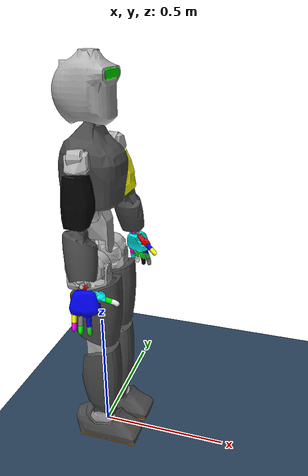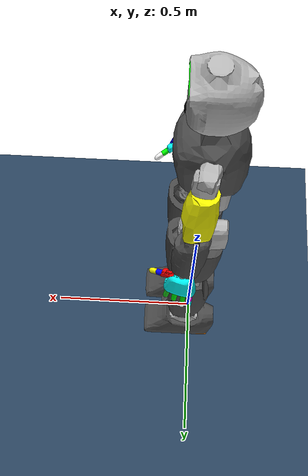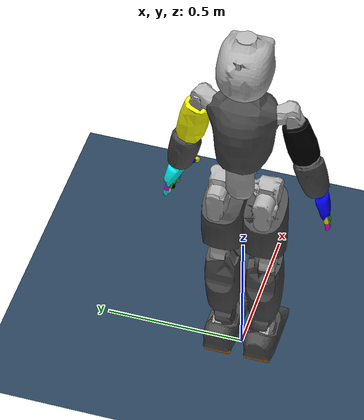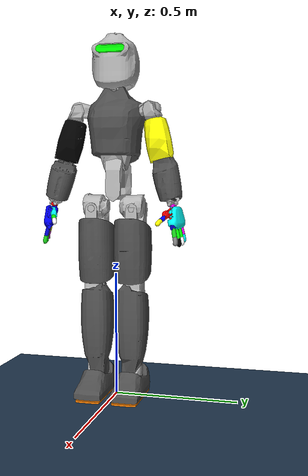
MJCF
<mujoco model="ergoCub">
  <compiler angle="radian" meshdir="./meshes/simmechanics/" autolimits="true" />
  <default />
  <asset>
    <mesh name="sim_ecub_r_hip_1_prt" file="sim_ecub_r_hip_1_prt.stl" scale="0.001 0.001 0.001" />
    <mesh name="sim_ecub_r_hip_2_prt" file="sim_ecub_r_hip_2_prt.stl" scale="0.001 0.001 0.001" />
    <mesh name="sim_ecub_r_hip_3_prt" file="sim_ecub_r_hip_3_prt.stl" scale="0.001 0.001 0.001" />
    <mesh name="sim_ecub_r_upper_leg_prt" file="sim_ecub_r_upper_leg_prt.stl" scale="0.001 0.001 0.001" />
    <mesh name="sim_ecub_r_lower_leg_prt" file="sim_ecub_r_lower_leg_prt.stl" scale="0.001 0.001 0.001" />
    <mesh name="sim_ecub_r_ankle_1_prt" file="sim_ecub_r_ankle_1_prt.stl" scale="0.001 0.001 0.001" />
    <mesh name="sim_ecub_r_ankle_2_prt" file="sim_ecub_r_ankle_2_prt.stl" scale="0.001 0.001 0.001" />
    <mesh name="sim_ecub_r_foot_rear_prt" file="sim_ecub_r_foot_rear_prt.stl" scale="0.001 0.001 0.001" />
    <mesh name="sim_ecub_r_foot_front_prt" file="sim_ecub_r_foot_front_prt.stl" scale="0.001 0.001 0.001" />
    <mesh name="sim_ecub_l_hip_1_prt" file="sim_ecub_l_hip_1_prt.stl" scale="0.001 0.001 0.001" />
    <mesh name="sim_ecub_l_hip_2_prt" file="sim_ecub_l_hip_2_prt.stl" scale="0.001 0.001 0.001" />
    <mesh name="sim_ecub_l_hip_3_prt" file="sim_ecub_l_hip_3_prt.stl" scale="0.001 0.001 0.001" />
    <mesh name="sim_ecub_l_upper_leg_prt" file="sim_ecub_l_upper_leg_prt.stl" scale="0.001 0.001 0.001" />
    <mesh name="sim_ecub_l_lower_leg_prt" file="sim_ecub_l_lower_leg_prt.stl" scale="0.001 0.001 0.001" />
    <mesh name="sim_ecub_l_ankle_1_prt" file="sim_ecub_l_ankle_1_prt.stl" scale="0.001 0.001 0.001" />
    <mesh name="sim_ecub_l_ankle_2_prt" file="sim_ecub_l_ankle_2_prt.stl" scale="0.001 0.001 0.001" />
    <mesh name="sim_ecub_l_foot_front_prt" file="sim_ecub_l_foot_front_prt.stl" scale="0.001 0.001 0.001" />
    <mesh name="sim_ecub_l_foot_rear_prt" file="sim_ecub_l_foot_rear_prt.stl" scale="0.001 0.001 0.001" />
    <mesh name="sim_ecub_torso_1_prt" file="sim_ecub_torso_1_prt.stl" scale="0.001 0.001 0.001" />
    <mesh name="sim_ecub_torso_2_prt" file="sim_ecub_torso_2_prt.stl" scale="0.001 0.001 0.001" />
    <mesh name="sim_ecub_chest_prt" file="sim_ecub_chest_prt.stl" scale="0.001 0.001 0.001" />
    <mesh name="sim_ecub_head_neck_2_prt" file="sim_ecub_head_neck_2_prt.stl" scale="0.001 0.001 0.001" />
    <mesh name="sim_ecub_head_neck_3_prt" file="sim_ecub_head_neck_3_prt.stl" scale="0.001 0.001 0.001" />
    <mesh name="sim_ecub_head_prt" file="sim_ecub_head_prt.stl" scale="0.001 0.001 0.001" />
    <mesh name="sim_ecub_realsense_prt" file="sim_ecub_realsense_prt.stl" scale="0.001 0.001 0.001" />
    <mesh name="sim_ecub_r_shoulder_1_prt" file="sim_ecub_r_shoulder_1_prt.stl" scale="0.001 0.001 0.001" />
    <mesh name="sim_ecub_r_shoulder_2_prt" file="sim_ecub_r_shoulder_2_prt.stl" scale="0.001 0.001 0.001" />
    <mesh name="sim_ecub_r_shoulder_3_prt" file="sim_ecub_r_shoulder_3_prt.stl" scale="0.001 0.001 0.001" />
    <mesh name="sim_ecub_r_upperarm_prt" file="sim_ecub_r_upperarm_prt.stl" scale="0.001 0.001 0.001" />
    <mesh name="sim_ecub_r_forearm_prt" file="sim_ecub_r_forearm_prt.stl" scale="0.001 0.001 0.001" />
    <mesh name="sim_ecub_r_wrist_1_prt" file="sim_ecub_r_wrist_1_prt.stl" scale="0.001 0.001 0.001" />
    <mesh name="sim_ecub_r_wrist_2_prt" file="sim_ecub_r_wrist_2_prt.stl" scale="0.001 0.001 0.001" />
    <mesh name="sim_ecub_r_hand_palm_prt" file="sim_ecub_r_hand_palm_prt.stl" scale="0.001 0.001 0.001" />
    <mesh name="sim_ecub_r_hand_pinkie_1_prt" file="sim_ecub_r_hand_pinkie_1_prt.stl" scale="0.001 0.001 0.001" />
    <mesh name="sim_ecub_r_hand_pinkie_2_prt" file="sim_ecub_r_hand_pinkie_2_prt.stl" scale="0.001 0.001 0.001" />
    <mesh name="sim_ecub_r_hand_thumb_1_prt" file="sim_ecub_r_hand_thumb_1_prt.stl" scale="0.001 0.001 0.001" />
    <mesh name="sim_ecub_r_hand_thumb_2_prt" file="sim_ecub_r_hand_thumb_2_prt.stl" scale="0.001 0.001 0.001" />
    <mesh name="sim_ecub_r_hand_thumb_3_prt" file="sim_ecub_r_hand_thumb_3_prt.stl" scale="0.001 0.001 0.001" />
    <mesh name="sim_ecub_r_hand_middle_1_prt" file="sim_ecub_r_hand_middle_1_prt.stl" scale="0.001 0.001 0.001" />
    <mesh name="sim_ecub_r_hand_middle_2_prt" file="sim_ecub_r_hand_middle_2_prt.stl" scale="0.001 0.001 0.001" />
    <mesh name="sim_ecub_r_hand_ring_1_prt" file="sim_ecub_r_hand_ring_1_prt.stl" scale="0.001 0.001 0.001" />
    <mesh name="sim_ecub_r_hand_ring_2_prt" file="sim_ecub_r_hand_ring_2_prt.stl" scale="0.001 0.001 0.001" />
    <mesh name="sim_ecub_l_shoulder_1_prt" file="sim_ecub_l_shoulder_1_prt.stl" scale="0.001 0.001 0.001" />
    <mesh name="sim_ecub_l_shoulder_2_prt" file="sim_ecub_l_shoulder_2_prt.stl" scale="0.001 0.001 0.001" />
    <mesh name="sim_ecub_l_shoulder_3_prt" file="sim_ecub_l_shoulder_3_prt.stl" scale="0.001 0.001 0.001" />
    <mesh name="sim_ecub_l_upperarm_prt" file="sim_ecub_l_upperarm_prt.stl" scale="0.001 0.001 0.001" />
    <mesh name="sim_ecub_l_forearm_prt" file="sim_ecub_l_forearm_prt.stl" scale="0.001 0.001 0.001" />
    <mesh name="sim_ecub_l_wrist_1_prt" file="sim_ecub_l_wrist_1_prt.stl" scale="0.001 0.001 0.001" />
    <mesh name="sim_ecub_l_wrist_2_prt" file="sim_ecub_l_wrist_2_prt.stl" scale="0.001 0.001 0.001" />
    <mesh name="sim_ecub_l_hand_palm_prt" file="sim_ecub_l_hand_palm_prt.stl" scale="0.001 0.001 0.001" />
    <mesh name="sim_ecub_l_hand_ring_1_prt" file="sim_ecub_l_hand_ring_1_prt.stl" scale="0.001 0.001 0.001" />
    <mesh name="sim_ecub_l_hand_ring_2_prt" file="sim_ecub_l_hand_ring_2_prt.stl" scale="0.001 0.001 0.001" />
    <mesh name="sim_ecub_l_hand_index_1_prt" file="sim_ecub_l_hand_index_1_prt.stl" scale="0.001 0.001 0.001" />
    <mesh name="sim_ecub_l_hand_index_2_prt" file="sim_ecub_l_hand_index_2_prt.stl" scale="0.001 0.001 0.001" />
    <mesh name="sim_ecub_l_hand_index_3_prt" file="sim_ecub_l_hand_index_3_prt.stl" scale="0.001 0.001 0.001" />
    <mesh name="sim_ecub_l_hand_middle_1_prt" file="sim_ecub_l_hand_middle_1_prt.stl" scale="0.001 0.001 0.001" />
    <mesh name="sim_ecub_l_hand_middle_2_prt" file="sim_ecub_l_hand_middle_2_prt.stl" scale="0.001 0.001 0.001" />
    <mesh name="sim_ecub_l_hand_thumb_1_prt" file="sim_ecub_l_hand_thumb_1_prt.stl" scale="0.001 0.001 0.001" />
    <mesh name="sim_ecub_l_hand_thumb_2_prt" file="sim_ecub_l_hand_thumb_2_prt.stl" scale="0.001 0.001 0.001" />
    <mesh name="sim_ecub_l_hand_thumb_3_prt" file="sim_ecub_l_hand_thumb_3_prt.stl" scale="0.001 0.001 0.001" />
    <mesh name="sim_ecub_l_hand_pinkie_1_prt" file="sim_ecub_l_hand_pinkie_1_prt.stl" scale="0.001 0.001 0.001" />
    <mesh name="sim_ecub_l_hand_pinkie_2_prt" file="sim_ecub_l_hand_pinkie_2_prt.stl" scale="0.001 0.001 0.001" />
  </asset>
  <worldbody>
    <body name="root_link" pos="0 0 0.78" gravcomp="0">
      <inertial pos="0.00127901 0.000157018 0.334963" quat="0.736432 0.0142072 0.0154965 0.676185" mass="15.7456" diaginertia="0.491199 0.488957 0.0465405" />
      <joint name="floating_joint" type="free" />
      <geom pos="0 0 0.1785" quat="0.707107 0 0 0.707107" type="mesh" contype="0" conaffinity="0" rgba="0.7 0.7 0.7 1" mesh="sim_ecub_torso_1_prt" />
      <geom pos="0 0 0.1785" quat="0.707107 0 0 0.707107" type="mesh" contype="0" conaffinity="0" rgba="0.7 0.7 0.7 1" mesh="sim_ecub_torso_2_prt" />
      <geom pos="0 0 0.1785" quat="0.707107 0 0 0.707107" type="mesh" contype="0" conaffinity="0" rgba="0.3 0.3 0.3 1" mesh="sim_ecub_chest_prt" />
      <geom pos="0 -5e-05 0.1785" quat="0.707107 0 0 0.707107" type="mesh" contype="0" conaffinity="0"  rgba="0.7 0.7 0.7 1" mesh="sim_ecub_head_neck_2_prt" />
      <geom pos="0 0 0.1785" quat="0.707107 0 0 0.707107" type="mesh"  contype="0" conaffinity="0" rgba="0.7 0.7 0.7 1" mesh="sim_ecub_head_neck_3_prt" />
      <geom pos="0 0 0.1785" quat="0.707107 0 0 0.707107" type="mesh" contype="0" conaffinity="0"  rgba="0.7 0.7 0.7 1" mesh="sim_ecub_head_prt" />
      <geom pos="0 0 0.1785" quat="0.707107 0 0 0.707107" type="mesh" contype="0" conaffinity="0" rgba="0 1 0 1" mesh="sim_ecub_realsense_prt" />
      <body name="r_hip_1" pos="0.0211 -0.0505 0" gravcomp="0">
        <inertial pos="-0.0040321 -0.0282494 -0.000674" quat="0.471583 0.463949 0.507259 0.552313" mass="2.23209" diaginertia="0.00270348 0.00246138 0.00220385" />
        <joint name="r_hip_pitch" pos="0 0 0" axis="0 -1 0" range="-0.785398 2.00713" damping="2" />
        <geom pos="-0.0211 0.0505 0.1785" quat="0.707107 0 0 0.707107" type="mesh" contype="0" conaffinity="0" rgba="0.7 0.7 0.7 1" mesh="sim_ecub_r_hip_1_prt" />
        <body name="r_hip_2" pos="-0.04725 -0.0331 -0.009" gravcomp="0">
          <inertial pos="0.0206737 0.00690112 -0.0935168" quat="0.685131 -0.126138 -0.177679 0.695065" mass="3.9815" diaginertia="0.02644 0.0237871 0.00862537" />
          <joint name="r_hip_roll" pos="0 0 0" axis="-1 0 0" range="-0.610865 1.95477" damping="2" />
          <geom pos="0.0262 0.0836 0.1875" quat="0.707107 0 0 0.707107" type="mesh" contype="0" conaffinity="0" rgba="0.7 0.7 0.7 1" mesh="sim_ecub_r_hip_2_prt" />
          <geom pos="0.0262 0.0836 0.1875" quat="0.707107 0 0 0.707107" type="mesh" contype="0" conaffinity="0" rgba="0.3 0.3 0.3 1" mesh="sim_ecub_r_hip_3_prt" />
          <body name="r_upper_leg" pos="0.0367 0.015 -0.1624" quat="1 0 0 5.9369e-07" gravcomp="0">
            <inertial pos="0.00851748 -0.0144685 -0.12675" quat="0.752216 -0.0338778 -0.00759657 0.658001" mass="2.78492" diaginertia="0.0121302 0.0118863 0.00221412" />
            <joint name="r_hip_yaw" pos="0 0 0" axis="0 0 -1" range="-1.39626 1.39626" damping="2" />
            <geom pos="-0.0105 0.0686 0.3499" quat="0.707107 0 0 0.707107" type="mesh" contype="0" conaffinity="0" rgba="0.7 0.7 0.7 1" mesh="sim_ecub_r_upper_leg_prt" />
            <body name="r_lower_leg" pos="0.0106 0.00789999 -0.1797" quat="0 1 -5.9369e-07 0" gravcomp="0">
              <inertial pos="0.0011585 0.0062002 0.214259" quat="0.00842304 0.725858 -0.687437 0.0221305" mass="3.74161" diaginertia="0.0473358 0.0460276 0.00468999" />
              <joint name="r_knee" pos="0 0 0" axis="0 1 0" range="-1.22173 0.0872665" damping="2" />
              <geom pos="-0.0211 -0.0607 -0.5296" quat="0 0.707107 -0.707107 0" type="mesh" contype="0" conaffinity="0" rgba="0.3 0.3 0.3 1" mesh="sim_ecub_r_lower_leg_prt" />
              <body name="r_ankle_1" pos="0 0.0319 0.321" quat="0 1 0 0" gravcomp="0">
                <inertial pos="-0.0013672 -0.0006602 -0.014087" quat="0.416612 0.576846 0.372407 0.595816" mass="0.348128" diaginertia="0.000597996 0.000440984 0.000246481" />
                <joint name="r_ankle_pitch" pos="0 0 0" axis="0 1 0" range="-0.785398 0.785398" damping="2" />
                <geom pos="-0.0211 0.0926 0.8506" quat="0.707107 0 0 0.707107" type="mesh" contype="0" conaffinity="0" rgba="0.7 0.7 0.7 1" mesh="sim_ecub_r_ankle_1_prt" />
                <body name="r_ankle_2" pos="-0.05275 0.0182 -0.035" gravcomp="0">
                  <inertial pos="0.0575787 -4.46421e-05 -0.0459216" quat="0.433467 0.556899 0.569284 0.421764" mass="2.98403" diaginertia="0.0126381 0.0123128 0.00281249" />
                  <joint name="r_ankle_roll" pos="0 0 0" axis="-1 0 0" range="-0.436332 0.436332" damping="2" />
                  <geom pos="0.03165 0.0744 0.8856" quat="0.707107 0 0 0.707107" type="mesh" contype="0" conaffinity="0" rgba="0.3 0.3 0.3 1" mesh="sim_ecub_r_ankle_2_prt" />
                  <geom pos="0.0316 0.0744 0.8856" quat="0.707107 0 0 0.707107" type="mesh" rgba="1 0.51 0 1"  mesh="sim_ecub_r_foot_rear_prt" />
                  <geom pos="0.03165 0.0744 0.8856" quat="0.707107 0 0 0.707107" type="mesh" rgba="1 0.51 0 1"  mesh="sim_ecub_r_foot_front_prt" />
                </body>
              </body>
            </body>
          </body>
        </body>
      </body>
      <body name="l_hip_1" pos="0.0211 0.0505 0" gravcomp="0">
        <inertial pos="-0.0040154 0.0282473 -0.000681" quat="0.551419 0.506606 0.463763 0.473509" mass="2.23177" diaginertia="0.00270283 0.00246163 0.00220285" />
        <joint name="l_hip_pitch" pos="0 0 0" axis="0 -1 0" range="-0.785398 2.00713" damping="2" />
        <geom pos="-0.0211 -0.0505 0.1785" quat="0.707107 0 0 0.707107" type="mesh" contype="0" conaffinity="0" rgba="0.7 0.7 0.7 1" mesh="sim_ecub_l_hip_1_prt" />
        <body name="l_hip_2" pos="-0.04725 0.0331 -0.009" gravcomp="0">
          <inertial pos="0.0206874 -0.00690172 -0.0935735" quat="0.69574 -0.176627 -0.125492 0.684836" mass="3.98136" diaginertia="0.0265634 0.0238959 0.00864075" />
          <joint name="l_hip_roll" pos="0 0 0" axis="1 0 0" range="-0.610865 1.95477" damping="2" />
          <geom pos="0.02615 -0.0836 0.1875" quat="0.707107 0 0 0.707107" type="mesh" contype="0" conaffinity="0" rgba="0.7 0.7 0.7 1" mesh="sim_ecub_l_hip_2_prt" />
          <geom pos="0.02615 -0.0836 0.1875" quat="0.707107 0 0 0.707107" type="mesh" contype="0" conaffinity="0" rgba="0.3 0.3 0.3 1" mesh="sim_ecub_l_hip_3_prt" />
          <body name="l_upper_leg" pos="0.0367 -0.015 -0.1624" gravcomp="0">
            <inertial pos="0.0085035 0.0144849 -0.126747" quat="0.666541 -0.00759957 -0.0335156 0.744676" mass="2.78492" diaginertia="0.0121286 0.0118796 0.00220771" />
            <joint name="l_hip_yaw" pos="0 0 0" axis="0 0 1" range="-1.39626 1.39626" damping="2" />
            <geom pos="-0.01055 -0.0686 0.3499" quat="0.707107 0 0 0.707107" type="mesh" contype="0" conaffinity="0" rgba="0.7 0.7 0.7 1" mesh="sim_ecub_l_upper_leg_prt" />
            <body name="l_lower_leg" pos="0.0106 -0.0079 -0.1797" quat="0 1 0 0" gravcomp="0">
              <inertial pos="0.0013845 -0.0061871 0.21426" quat="-0.0218229 0.692096 -0.721423 -0.00870268" mass="3.74161" diaginertia="0.0473316 0.0460262 0.00468891" />
              <joint name="l_knee" pos="0 0 0" axis="0 1 0" range="-1.22173 0.0872665" damping="2" />
              <geom pos="-0.02115 0.0607 -0.5296" quat="0 0.707107 -0.707107 0" type="mesh" contype="0" conaffinity="0" rgba="0.3 0.3 0.3 1" mesh="sim_ecub_l_lower_leg_prt" />
              <body name="l_ankle_1" pos="0 -0.0319 0.321" quat="0 1 0 0" gravcomp="0">
                <inertial pos="-0.0013852 0.0006602 -0.014087" quat="0.592894 0.375471 0.580004 0.413634" mass="0.348128" diaginertia="0.000597982 0.00044068 0.000246741" />
                <joint name="l_ankle_pitch" pos="0 0 0" axis="0 1 0" range="-0.785398 0.785398" damping="2" />
                <geom pos="-0.02115 -0.0926 0.8506" quat="0.707107 0 0 0.707107" type="mesh" contype="0" conaffinity="0" rgba="0.7 0.7 0.7 1" mesh="sim_ecub_l_ankle_1_prt" />
                <body name="l_ankle_2" pos="-0.05275 -0.0182 -0.035" gravcomp="0">
                  <inertial pos="0.0575766 -5.0584e-05 -0.0459216" quat="0.429696 0.561483 0.564872 0.425462" mass="2.98403" diaginertia="0.0126364 0.0123084 0.00280439" />
                  <joint name="l_ankle_roll" pos="0 0 0" axis="1 0 0" range="-0.436332 0.436332" damping="2" />
                  <geom pos="0.0316 -0.0744 0.8856" quat="0.707107 0 0 0.707107" type="mesh" contype="0" conaffinity="0" rgba="0.3 0.3 0.3 1" mesh="sim_ecub_l_ankle_2_prt" />
                  <geom pos="0.0316 -0.0744 0.8856" quat="0.707107 0 0 0.707107" type="mesh" rgba="1 0.51 0 1" mesh="sim_ecub_l_foot_front_prt" />
                  <geom pos="0.0316 -0.0744 0.8856" quat="0.707107 0 0 0.707107" type="mesh" rgba="1 0.51 0 1" mesh="sim_ecub_l_foot_rear_prt" />
                </body>
              </body>
            </body>
          </body>
        </body>
      </body>
      <body name="r_shoulder_1" pos="-0.0135187 -0.0670476 0.36649" quat="0.982708 -0.121688 -0.0429061 0.132799" gravcomp="0">
        <inertial pos="0.000172398 -0.0678405 0.000475572" quat="0.0238343 -0.0206203 0.702642 0.710846" mass="0.792282" diaginertia="0.00120974 0.0011959 0.000330536" />
        <joint name="r_shoulder_pitch" pos="0 0 0" axis="-3.35225e-07 1 -2.20686e-07" range="-2.96706 0.610865" damping="2" />
        <geom pos="0.0214149 0.106413 -0.168036" quat="0.788783 0.116385 -0.055707 0.600977" type="mesh" contype="0" conaffinity="0" rgba="0.7 0.7 0.7 1" mesh="sim_ecub_r_shoulder_1_prt" />
        <body name="r_shoulder_2" pos="0.00749996 -0.0933001 -6.00683e-07" gravcomp="0">
          <inertial pos="0.000512067 -0.000143644 -0.0364077" quat="0.681235 0.173027 0.171393 0.690366" mass="0.710693" diaginertia="0.000821732 0.000757933 0.000320608" />
          <joint name="r_shoulder_roll" pos="0 0 0" axis="-1 1.71286e-07 2.92871e-07" range="-0.261799 2.61799" damping="2" />
          <geom pos="0.0139014 0.199666 -0.168047" quat="0.788783 0.116385 -0.055707 0.600977" type="mesh" contype="0" conaffinity="0" rgba="0.7 0.7 0.7 1" mesh="sim_ecub_r_shoulder_2_prt" />
          <geom pos="0.0139014 0.199666 -0.168047" quat="0.788783 0.116385 -0.055707 0.600977" type="mesh" contype="0" conaffinity="0" rgba="0.7 0.7 0.7 1" mesh="sim_ecub_r_shoulder_3_prt" />
          <body name="r_upperarm" pos="-0.00684991 3.26793e-07 -0.0767999" gravcomp="0">
            <inertial pos="0.000147064 -0.00233532 -0.0501167" quat="0.797511 -0.0270149 0.0111229 0.602596" mass="1.77224" diaginertia="0.00352538 0.00341395 0.00156994" />
            <joint name="r_shoulder_yaw" pos="0 0 0" axis="1.71338e-07 -2.36593e-07 1" range="-0.872665 1.39626" damping="2" />
            <geom pos="0.0207514 0.199666 -0.0912466" quat="0.788783 0.116385 -0.055707 0.600977" type="mesh" contype="0" conaffinity="0" rgba="0 0 0 1" mesh="sim_ecub_r_upperarm_prt" />
            <body name="r_forearm" pos="0.01 0.00150007 -0.1237" gravcomp="0">
              <inertial pos="0.00192384 0.00792081 -0.326384" quat="0.613625 0.238162 0.290072 0.694695" mass="1.47607" diaginertia="0.01 0.01 0.01" />
              <joint name="r_elbow" pos="0 0 0" axis="3.35225e-07 -1 2.20686e-07" range="-0.0523599 1.309" damping="2" />
              <geom pos="0.0107513 0.198166 0.032453" quat="0.788783 0.116385 -0.055707 0.600977" type="mesh" contype="0" conaffinity="0" rgba="0.3 0.3 0.3 1" mesh="sim_ecub_r_forearm_prt" />
              <geom pos="0.0107513 0.198166 0.032453" quat="0.788783 0.116385 -0.055707 0.600977" type="mesh" contype="0" conaffinity="0" rgba="0.7 0.7 0.7 1" mesh="sim_ecub_r_wrist_1_prt" />
              <geom pos="0.0107513 0.198166 0.032453" quat="0.788783 0.116385 -0.055707 0.600977" type="mesh" contype="0" conaffinity="0" rgba="1 0 0 1" mesh="sim_ecub_r_wrist_2_prt" />
              <geom pos="0.0107513 0.198166 0.032453" quat="0.788783 0.116385 -0.055707 0.600977" type="mesh" contype="0" conaffinity="0" rgba="0 0 1 1" mesh="sim_ecub_r_hand_palm_prt" />
              <geom pos="0.0107513 0.198166 0.032453" quat="0.788783 0.116385 -0.055707 0.600977" type="mesh" contype="0" conaffinity="0" rgba="1 1 0 1" mesh="sim_ecub_r_hand_pinkie_1_prt" />
              <geom pos="0.0107514 0.198166 0.032453" quat="0.788783 0.116385 -0.055707 0.600977" type="mesh" contype="0" conaffinity="0" rgba="1 0 1 1" mesh="sim_ecub_r_hand_pinkie_2_prt" />
              <geom pos="0.0107513 0.198166 0.032453" quat="0.788783 0.116385 -0.055707 0.600977" type="mesh" contype="0" conaffinity="0" rgba="0 1 1 1" mesh="sim_ecub_r_hand_thumb_1_prt" />
              <geom pos="0.0107513 0.198166 0.032453" quat="0.788783 0.116385 -0.055707 0.600977" type="mesh" contype="0" conaffinity="0" rgba="0 1 0 1" mesh="sim_ecub_r_hand_thumb_2_prt" />
              <geom pos="0.0107513 0.198166 0.032453" quat="0.788783 0.116385 -0.055707 0.600977" type="mesh" contype="0" conaffinity="0" rgba="1 1 1 1" mesh="sim_ecub_r_hand_thumb_3_prt" />
              <geom pos="0.0107513 0.198166 0.032453" quat="-0.788783 -0.116385 0.055707 -0.600977" type="mesh" contype="0" conaffinity="0" rgba="0 0 0.8 1" mesh="sim_ecub_r_hand_middle_1_prt" />
              <geom pos="0.0107513 0.198166 0.032453" quat="-0.788783 -0.116385 0.055707 -0.600977" type="mesh" contype="0" conaffinity="0" rgba="0.1 0.8 0.1 1" mesh="sim_ecub_r_hand_middle_2_prt" />
              <geom pos="0.0107513 0.198166 0.032453" quat="0.788783 0.116385 -0.055707 0.600977" type="mesh" contype="0" conaffinity="0" mesh="sim_ecub_r_hand_ring_1_prt" />
              <geom pos="0.0107513 0.198166 0.032453" quat="0.788783 0.116385 -0.055707 0.600977" type="mesh" contype="0" conaffinity="0" rgba="0 1 0 1" mesh="sim_ecub_r_hand_ring_2_prt" />
            </body>
          </body>
        </body>
      </body>
      <body name="l_shoulder_1" pos="-0.0135187 0.0670476 0.36649" quat="0.982708 0.121688 -0.0429058 -0.132799" gravcomp="0">
        <inertial pos="0.000148281 0.0678296 0.000503488" quat="0.0086468 -0.011851 0.711187 0.70285" mass="0.791376" diaginertia="0.00120905 0.00119544 0.000329558" />
        <joint name="l_shoulder_pitch" pos="0 0 0" axis="1.4959e-07 1 2.72203e-07" range="-2.96706 0.610865" damping="2" />
        <geom pos="0.0214151 -0.106413 -0.168036" quat="0.600977 -0.0557072 0.116385 0.788783" type="mesh" rgba="0.7 0.7 0.7 1" mesh="sim_ecub_l_shoulder_1_prt" />
        <body name="l_shoulder_2" pos="0.00500013 0.0932995 -4.34136e-07" gravcomp="0">
          <inertial pos="0.00302787 0.000128307 -0.0364069" quat="0.68686 0.173186 0.172996 0.684326" mass="0.712399" diaginertia="0.000824775 0.000759006 0.000323849" />
          <joint name="l_shoulder_roll" pos="0 0 0" axis="1 3.5692e-07 2.72158e-07" range="-0.261799 2.61799" damping="2" />
          <geom pos="0.0164285 -0.199759 -0.168024" quat="0.600977 -0.0557072 0.116385 0.788783" type="mesh" rgba="0.7 0.7 0.7 1" mesh="sim_ecub_l_shoulder_2_prt" />
          <geom pos="0.0164285 -0.199759 -0.168024" quat="0.600977 -0.0557072 0.116385 0.788783" type="mesh" rgba="0.7 0.7 0.7 1" mesh="sim_ecub_l_shoulder_3_prt" />
          <body name="l_upperarm" pos="-0.00435007 2.43599e-07 -0.0768001" gravcomp="0">
            <inertial pos="0.00013045 0.00225331 -0.0500647" quat="0.610168 0.0102954 -0.0258805 0.791783" mass="1.77085" diaginertia="0.00352386 0.00341014 0.00156558" />
            <joint name="l_shoulder_yaw" pos="0 0 0" axis="3.93691e-07 -1.85076e-07 -1" range="-0.872665 1.39626" damping="2" />
            <geom pos="0.0207786 -0.19976 -0.0912239" quat="0.600977 -0.0557072 0.116385 0.788783" type="mesh" rgba="1 1 0 1" mesh="sim_ecub_l_upperarm_prt" />
            <body name="l_forearm" pos="0.0100001 -0.00150006 -0.1237" gravcomp="0">
              <inertial pos="0.00192604 -0.00793183 -0.326506" quat="0.693294 0.293184 0.24049 0.612822" mass="1.47607" diaginertia="0.01 0.01 0.01" />
              <joint name="l_elbow" pos="0 0 0" axis="-1.4959e-07 -1 -2.72203e-07" range="-0.0523599 1.309" damping="2" />
              <geom pos="0.0107785 -0.19826 0.0324758" quat="0.600977 -0.0557072 0.116385 0.788783" type="mesh"  contype="0" conaffinity="0" rgba="0.3 0.3 0.3 1" mesh="sim_ecub_l_forearm_prt" />
              <geom pos="0.0107785 -0.19826 0.0324758" quat="0.600977 -0.0557072 0.116385 0.788783" type="mesh"  contype="0" conaffinity="0" rgba="0.7 0.7 0.7 1" mesh="sim_ecub_l_wrist_1_prt" />
              <geom pos="0.0107785 -0.19826 0.0324758" quat="0.600977 -0.0557072 0.116385 0.788783" type="mesh"  contype="0" conaffinity="0" rgba="1 0 1 1" mesh="sim_ecub_l_wrist_2_prt" />
              <geom pos="0.0107785 -0.19826 0.0324758" quat="0.600977 -0.0557072 0.116385 0.788783" type="mesh"  contype="0" conaffinity="0" rgba="0 1 1 1" mesh="sim_ecub_l_hand_palm_prt" />
              <geom pos="0.0107785 -0.19826 0.0324758" quat="0.600977 -0.0557073 0.116385 0.788783" type="mesh"  contype="0" conaffinity="0" rgba="0 1 0 1" mesh="sim_ecub_l_hand_ring_1_prt" />
              <geom pos="0.0107784 -0.19826 0.0324758" quat="0.600977 -0.0557073 0.116385 0.788783" type="mesh"  contype="0" conaffinity="0" rgba="1 1 1 1" mesh="sim_ecub_l_hand_ring_2_prt" />
              <geom pos="0.0107785 -0.19826 0.0324758" quat="0.600977 -0.0557072 0.116385 0.788783" type="mesh"  contype="0" conaffinity="0" rgba="0 0 0.8 1" mesh="sim_ecub_l_hand_index_1_prt" />
              <geom pos="0.0107785 -0.19826 0.0324758" quat="0.600977 -0.0557072 0.116385 0.788783" type="mesh"  contype="0" conaffinity="0" rgba="0.1 0.8 0.1 1" mesh="sim_ecub_l_hand_index_2_prt" />
              <geom pos="0.0107786 -0.19826 0.0324758" quat="0.600977 -0.0557072 0.116385 0.788783" type="mesh"  contype="0" conaffinity="0" mesh="sim_ecub_l_hand_index_3_prt" />
              <geom pos="0.0107785 -0.19826 0.0324758" quat="0.600977 -0.0557072 0.116385 0.788783" type="mesh"  contype="0" conaffinity="0" rgba="0 1 0 1" mesh="sim_ecub_l_hand_middle_1_prt" />
              <geom pos="0.0107785 -0.19826 0.0324758" quat="0.600977 -0.0557072 0.116385 0.788783" type="mesh"  contype="0" conaffinity="0" rgba="0 0 0 1" mesh="sim_ecub_l_hand_middle_2_prt" />
              <geom pos="0.0107785 -0.19826 0.0324758" quat="0.600977 -0.0557072 0.116385 0.788783" type="mesh"  contype="0" conaffinity="0" rgba="1 0 0 1" mesh="sim_ecub_l_hand_thumb_1_prt" />
              <geom pos="0.0107785 -0.19826 0.0324758" quat="-0.600977 0.0557072 -0.116385 -0.788783" type="mesh"  contype="0" conaffinity="0" rgba="0 0 1 1" mesh="sim_ecub_l_hand_thumb_2_prt" />
              <geom pos="0.0107785 -0.19826 0.0324758" quat="-0.600977 0.0557072 -0.116385 -0.788783" type="mesh"  contype="0" conaffinity="0" rgba="1 1 0 1" mesh="sim_ecub_l_hand_thumb_3_prt" />
              <geom pos="0.0107785 -0.19826 0.0324758" quat="0.600977 -0.0557073 0.116385 0.788783" type="mesh"  contype="0" conaffinity="0" rgba="1 0 1 1" mesh="sim_ecub_l_hand_pinkie_1_prt" />
              <geom pos="0.0107786 -0.19826 0.0324758" quat="0.600977 -0.0557073 0.116385 0.788783" type="mesh"  contype="0" conaffinity="0" rgba="0 1 1 1" mesh="sim_ecub_l_hand_pinkie_2_prt" />
            </body>
          </body>
        </body>
      </body>
    </body>
  <geom name="floor" size="0 0 .05" type="plane" material="grid" condim="3" friction="1.0 0.01 0.002"  /></worldbody>
<actuator>
<motor name="r_hip_pitch" joint="r_hip_pitch" gear="1" ctrlrange="-100 100" />
<motor name="r_hip_roll" joint="r_hip_roll" gear="1" ctrlrange="-100 100" />
<motor name="r_hip_yaw" joint="r_hip_yaw" gear="1" ctrlrange="-100 100" />
<motor name="r_knee" joint="r_knee" gear="1" ctrlrange="-100 100" />
<motor name="r_ankle_pitch" joint="r_ankle_pitch" gear="1" ctrlrange="-100 100" />
<motor name="r_ankle_roll" joint="r_ankle_roll" gear="1" ctrlrange="-100 100" />
<motor name="l_hip_pitch" joint="l_hip_pitch" gear="1" ctrlrange="-100 100" />
<motor name="l_hip_roll" joint="l_hip_roll" gear="1" ctrlrange="-100 100" />
<motor name="l_hip_yaw" joint="l_hip_yaw" gear="1" ctrlrange="-100 100" />
<motor name="l_knee" joint="l_knee" gear="1" ctrlrange="-100 100" />
<motor name="l_ankle_pitch" joint="l_ankle_pitch" gear="1" ctrlrange="-100 100" />
<motor name="l_ankle_roll" joint="l_ankle_roll" gear="1" ctrlrange="-100 100" />
<motor name="r_shoulder_pitch" joint="r_shoulder_pitch" gear="1" ctrlrange="-100 100" />
<motor name="r_shoulder_roll" joint="r_shoulder_roll" gear="1" ctrlrange="-100 100" />
<motor name="r_shoulder_yaw" joint="r_shoulder_yaw" gear="1" ctrlrange="-100 100" />
<motor name="r_elbow" joint="r_elbow" gear="1" ctrlrange="-100 100" />
<motor name="l_shoulder_pitch" joint="l_shoulder_pitch" gear="1" ctrlrange="-100 100" />
<motor name="l_shoulder_roll" joint="l_shoulder_roll" gear="1" ctrlrange="-100 100" />
<motor name="l_shoulder_yaw" joint="l_shoulder_yaw" gear="1" ctrlrange="-100 100" />
<motor name="l_elbow" joint="l_elbow" gear="1" ctrlrange="-100 100" />
</actuator><asset><texture type="skybox" builtin="gradient" rgb1=".3 .5 .7" rgb2="0 0 0" width="32" height="512" /><texture name="body" type="cube" builtin="flat" mark="cross" rgb1="0.8 0.6 0.4" rgb2="0.8 0.6 0.4" width="127" height="1278" markrgb="1 1 1" random="0.01" /><texture name="grid" type="2d" builtin="checker" rgb1=".1 .2 .3" rgb2=".2 .3 .4" width="512" height="512" /><material name="body" texture="body" texuniform="true" rgba="0.8 0.6 .4 1" /><material name="grid" texture="grid" texrepeat="1 1" texuniform="true" reflectance=".2" /></asset></mujoco>
